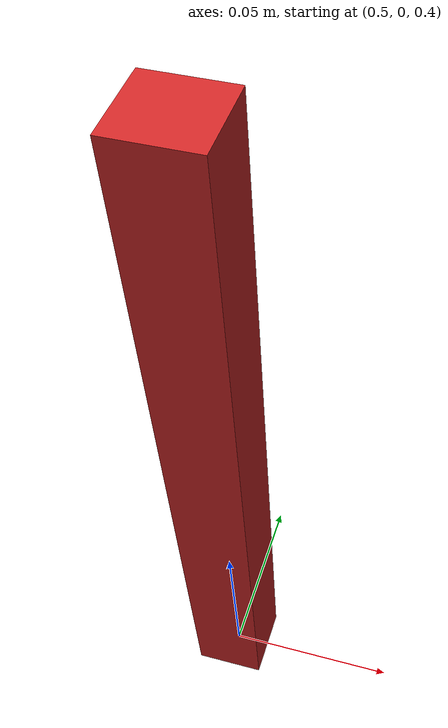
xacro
<?xml version="1.0"?>
<robot
    xmlns:xacro="http://www.ros.org/wiki/xacro" name="object" >
    <!-- Variables: -->
    <xacro:property name="position" value="0.5 0.0 0.5" />
    <xacro:property name="size" value="0.02 0.02 0.2" />
    <link name="core">
        <inertial>
            <origin xyz="${position}" />
            <mass value="0.01" />
            <inertia ixx="0.0" ixy="0.0" ixz="0.0" iyy="0.0" iyz="0.0" izz="0.0" />
        </inertial>
        <visual>
            <origin xyz="${position}" />
            <geometry>
                <box size="${size}" />
            </geometry>
        </visual>
        <collision>
            <origin xyz="${position}" />
            <geometry>
                <box size="${size}" />
            </geometry>
        </collision>
    </link>
    <!-- Gazebo settings -->
    <gazebo reference="core">
        <gravity>1</gravity>
        <material>Gazebo/Red</material>
        <mu1>130.0</mu1>
        <mu2>130.0</mu2>
    </gazebo>
</robot>
